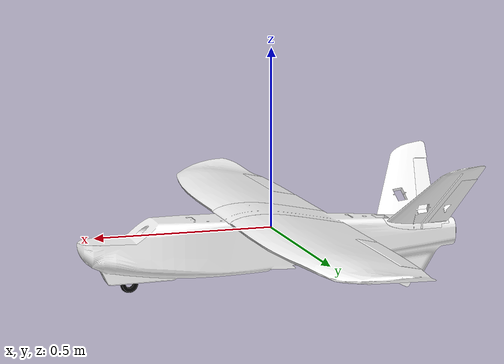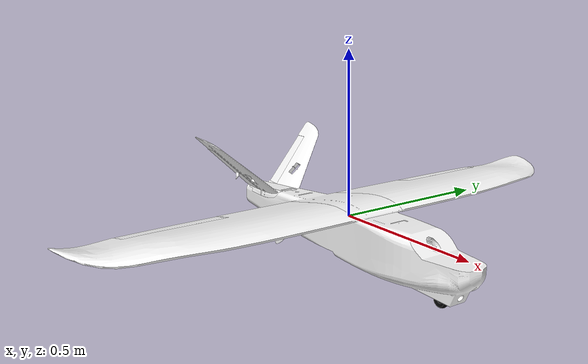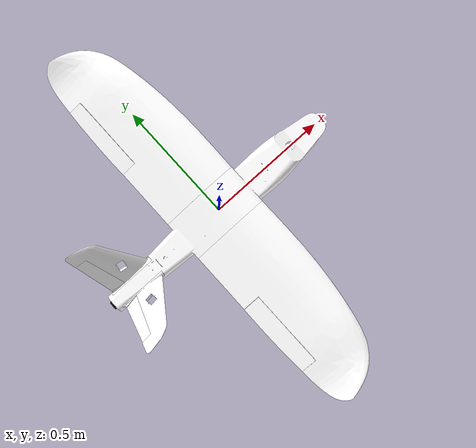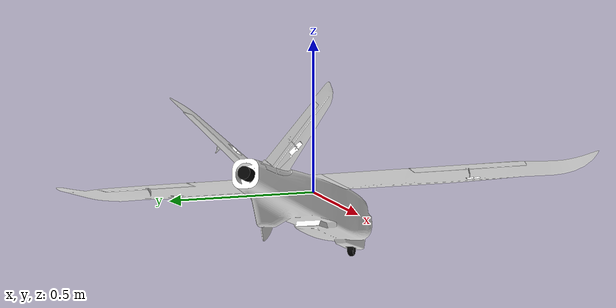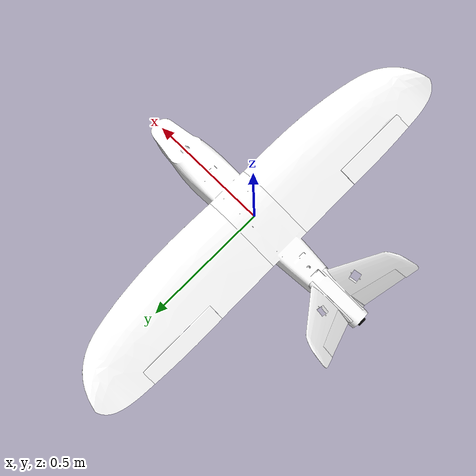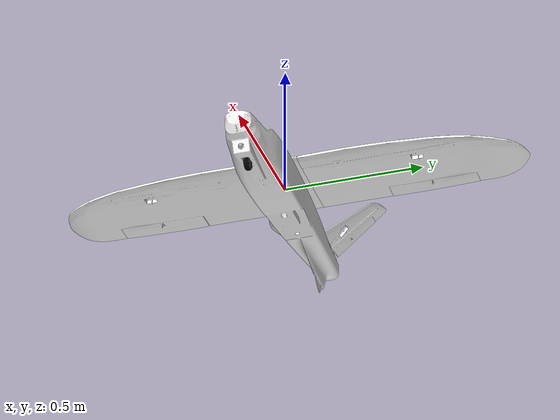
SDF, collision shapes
<?xml version="1.0"?>
<sdf version="1.9">
  <model name="mini_talon_vtail">

    <link name="base_link">
      <inertial>
        <pose>0.050402 0 0 0 0 0</pose>
        <mass>2.2263335</mass>
        <inertia>
          <ixx>0.059107217</ixx>
          <ixy>0</ixy>
          <ixz>0</ixz>
          <iyy>0.20694208</iyy>
          <iyz>0</iyz>
          <izz>0.24939269</izz>
        </inertia>
      </inertial>

      <collision name="fuselage_collision">
        <pose degrees="true">0 0 0 0 0 0</pose>
        <geometry>
          <mesh>
            <uri>model://mini_talon_vtail/meshes/mini_talon_fuselage_collision.stl</uri>
          </mesh>
        </geometry>
      </collision>

      <collision name="left_wing_collision">
        <pose degrees="true">0 0 0 0 0 0</pose>
        <geometry>
          <mesh>
            <uri>model://mini_talon_vtail/meshes/mini_talon_left_wing_collision.stl</uri>
          </mesh>
        </geometry>
      </collision>

      <collision name="right_wing_collision">
        <pose degrees="true">0 0 0 0 0 0</pose>
        <geometry>
          <mesh>
            <uri>model://mini_talon_vtail/meshes/mini_talon_right_wing_collision.stl</uri>
          </mesh>
        </geometry>
      </collision>

      <collision name="left_tail_collision">
        <pose degrees="true">0 0 0 0 0 0</pose>
        <geometry>
          <mesh>
            <uri>model://mini_talon_vtail/meshes/mini_talon_left_tail_collision.stl</uri>
          </mesh>
        </geometry>
      </collision>

      <collision name="right_tail_collision">
        <pose degrees="true">0 0 0 0 0 0</pose>
        <geometry>
          <mesh>
            <uri>model://mini_talon_vtail/meshes/mini_talon_right_tail_collision.stl</uri>
          </mesh>
        </geometry>
      </collision>

      <sensor name="temas_sensoru" type="contact">
        <always_on>1</always_on>
        <update_rate>100</update_rate>
        <contact>
          <collision>fuselage_collision</collision>
          <collision>left_wing_collision</collision>
          <collision>right_wing_collision</collision>
          <collision>left_tail_collision</collision>
          <collision>right_tail_collision</collision>
        </contact>
      </sensor>

      <visual name="fuselage_visual">
        <pose degrees="true">0 0 0 0 0 0</pose>
        <geometry>
          <mesh>
            <uri>model://mini_talon_vtail/meshes/mini_talon_fuselage.dae</uri>
          </mesh>
        </geometry>
        <material>
          <diffuse>1.0 1.0 1.0</diffuse>
          <specular>1.0 1.0 1.0</specular>
          <pbr>
            <metal>
                <metalness>0.1</metalness>
            </metal>
          </pbr>
        </material>
      </visual>

      <visual name="fuselage_logos_visual">
        <pose degrees="true">0 0 0 0 0 0</pose>
        <geometry>
          <mesh>
            <uri>model://mini_talon_vtail/meshes/mini_talon_fuselage_logos.dae</uri>
          </mesh>
        </geometry>
        <material>
          <diffuse>1.0 1.0 1.0</diffuse>
          <specular>1.0 1.0 1.0</specular>
          <pbr>
            <metal>
                <albedo_map>model://mini_talon_vtail/meshes/ardupilot_logo.png</albedo_map>
                <metalness>0.1</metalness>
            </metal>
          </pbr>
        </material>
      </visual>

      <visual name="forward_deck_visual">
        <pose degrees="true">0 0 0 0 0 0</pose>
        <geometry>
          <mesh>
            <uri>model://mini_talon_vtail/meshes/mini_talon_forward_deck.dae</uri>
          </mesh>
        </geometry>
        <material>
          <diffuse>1.0 1.0 1.0</diffuse>
          <specular>1.0 1.0 1.0</specular>
          <pbr>
            <metal>
                <metalness>0.1</metalness>
            </metal>
          </pbr>
        </material>
      </visual>

      <visual name="left_wing_visual">
        <pose degrees="true">0 0 0 0 0 0</pose>
        <geometry>
          <mesh>
            <uri>model://mini_talon_vtail/meshes/mini_talon_left_wing.dae</uri>
          </mesh>
        </geometry>
        <material>
          <diffuse>1.0 1.0 1.0</diffuse>
          <specular>1.0 1.0 1.0</specular>
          <pbr>
            <metal>
                <metalness>0.1</metalness>
            </metal>
          </pbr>
        </material>
      </visual>

      <visual name="left_wing_logo_visual">
        <pose degrees="true">0 0 0 0 0 0</pose>
        <geometry>
          <mesh>
            <uri>model://mini_talon_vtail/meshes/mini_talon_left_wing_logo.dae</uri>
          </mesh>
        </geometry>
        <material>
          <diffuse>1.0 1.0 1.0</diffuse>
          <specular>1.0 1.0 1.0</specular>
          <pbr>
            <metal>
                <albedo_map>model://mini_talon_vtail/meshes/ardupilot_logo.png</albedo_map>
                <metalness>0.1</metalness>
            </metal>
          </pbr>
        </material>
      </visual>

      <visual name="right_wing_visual">
        <pose degrees="true">0 0 0 0 0 0</pose>
        <geometry>
          <mesh>
            <uri>model://mini_talon_vtail/meshes/mini_talon_right_wing.dae</uri>
          </mesh>
        </geometry>
        <material>
          <diffuse>1.0 1.0 1.0</diffuse>
          <specular>1.0 1.0 1.0</specular>
          <pbr>
            <metal>
                <metalness>0.1</metalness>
            </metal>
          </pbr>
        </material>
      </visual>

      <visual name="left_tail_visual">
        <pose degrees="true">0 0 0 0 0 0</pose>
        <geometry>
          <mesh>
            <uri>model://mini_talon_vtail/meshes/mini_talon_left_tail.dae</uri>
          </mesh>
        </geometry>
        <material>
          <diffuse>1.0 1.0 1.0</diffuse>
          <specular>1.0 1.0 1.0</specular>
          <pbr>
            <metal>
                <metalness>0.1</metalness>
            </metal>
          </pbr>
        </material>
      </visual>

      <visual name="right_tail_visual">
        <pose degrees="true">0 0 0 0 0 0</pose>
        <geometry>
          <mesh>
            <uri>model://mini_talon_vtail/meshes/mini_talon_right_tail.dae</uri>
          </mesh>
        </geometry>
        <material>
          <diffuse>1.0 1.0 1.0</diffuse>
          <specular>1.0 1.0 1.0</specular>
          <pbr>
            <metal>
                <metalness>0.1</metalness>
            </metal>
          </pbr>
        </material>
      </visual>

      <visual name="motor_plate_visual">
        <pose degrees="true">-0.55029688 0 -0.040265625 0 90 0</pose>
        <geometry>
          <mesh>
            <uri>model://mini_talon_vtail/meshes/propdrive_3536_frontplate.dae</uri>
          </mesh>
        </geometry>
        <material>
          <diffuse>1.0 1.0 1.0</diffuse>
          <specular>1.0 1.0 1.0</specular>
          <pbr>
            <metal>
                <metalness>0.1</metalness>
            </metal>
          </pbr>
        </material>
      </visual>

      <!-- leave for debugging lift-drag CoP -->

      <!-- Sensors. -->
      <sensor name="imu_sensor" type="imu">
        <pose degrees="true">0 0 0 180 0 0</pose>
        <always_on>1</always_on>
        <update_rate>1000.0</update_rate>
      </sensor>
      <sensor name="navsat_sensor" type="navsat">
        <always_on>1</always_on>
        <update_rate>1</update_rate>
      </sensor>
      <!-- HEDEF İHA (Talon) burun kamerası — gcs "HEDEF İHA" sekmesini besler.
           Burunda, ileriye + hafif aşağı bakar (ufuk + zemin). -->
      <sensor name="talon_camera" type="camera">
        <gz_frame_id>base_link</gz_frame_id>
        <pose>0.46976563 0 0.067109375 0 -0.15 0</pose>
        <always_on>1</always_on>
        <update_rate>30</update_rate>
        <visualize>1</visualize>
        <topic>talon_cam/image</topic>
        <camera>
          <horizontal_fov>1.8</horizontal_fov>
          <image>
            <width>640</width>
            <height>480</height>
            <format>R8G8B8</format>
          </image>
          <clip>
            <near>0.05</near>
            <far>2000</far>
          </clip>
        </camera>
      </sensor>

      <sensor name="chase_camera" type="camera">
        <gz_frame_id>base_link</gz_frame_id>
        <pose>-3.3554688 0 1.07375 0 0.31 0</pose>
        <always_on>1</always_on>
        <update_rate>15</update_rate>
        <visualize>0</visualize>
        <topic>talon_chase/image</topic>
        <camera>
          <horizontal_fov>1.4</horizontal_fov>
          <image>
            <width>640</width>
            <height>480</height>
            <format>R8G8B8</format>
          </image>
          <clip>
            <near>0.05</near>
            <far>2000</far>
          </clip>
        </camera>
      </sensor>

      <sensor name="carpisma_sensoru" type="contact">
        <always_on>1</always_on>
        <update_rate>100</update_rate>
        <contact>
          <collision>fuselage_collision</collision>
          <collision>left_wing_collision</collision>
          <collision>right_wing_collision</collision>
          <collision>left_tail_collision</collision>
          <collision>right_tail_collision</collision>
        </contact>
      </sensor>
    </link>

    <link name="main_wheel_link">
      <pose degrees="true">0.40536478 0 -0.13149948 90 0 0</pose>
      <inertial>
        <mass>0.013333334</mass>
        <inertia>
          <ixx>2.4474975e-06</ixx>
          <ixy>0</ixy>
          <ixz>0</ixz>
          <iyy>2.4474975e-06</iyy>
          <iyz>0</iyz>
          <izz>4.1103478e-06</izz>
        </inertia>
      </inertial>
      <collision name="main_wheel_collision">
        <geometry>
          <mesh>
            <uri>model://mini_talon_vtail/meshes/mini_talon_main_wheel_collision.stl</uri>
          </mesh>
        </geometry>
      </collision>
      <visual name="main_wheel_visual">
        <geometry>
          <mesh>
            <uri>model://mini_talon_vtail/meshes/mini_talon_main_wheel.dae</uri>
          </mesh>
        </geometry>
        <material>
          <diffuse>0.01 0.01 0.01</diffuse>
          <specular>0.01 0.01 0.01</specular>
          <pbr>
            <metal>
                <metalness>0.1</metalness>
                <roughness>0.8</roughness>
            </metal>
          </pbr>
        </material>
      </visual>
    </link>
    <joint name="main_wheel_joint" type="revolute">
      <pose degrees="true">0 0 0 0 0 0</pose>
      <parent>base_link</parent>
      <child>main_wheel_link</child>
      <axis>
        <xyz>0 0 1</xyz>
        <limit>
          <lower>-1.0e-16</lower>
          <upper>1.0e+16</upper>
        </limit>
        <dynamics>
          <damping>0.0001</damping>
        </dynamics>
      </axis>
    </joint>

    <link name="left_aileron_link">
      <pose degrees="true">-0.14361406 0.49795156 0.023354063 0 0 0</pose>
      <inertial>
        <mass>0.013333334</mass>
        <inertia>
          <ixx>0.00011247954</ixx>
          <ixy>0</ixy>
          <ixz>0</ixz>
          <iyy>6.1049805e-06</iyy>
          <iyz>0</iyz>
          <izz>0.00011848443</izz>
        </inertia>
      </inertial>
      <collision name="left_aileron_collision">
        <geometry>
          <mesh>
            <uri>model://mini_talon_vtail/meshes/mini_talon_left_aileron.dae</uri>
          </mesh>
        </geometry>
      </collision>
      <visual name="left_aileron_visual">
        <geometry>
          <mesh>
            <uri>model://mini_talon_vtail/meshes/mini_talon_left_aileron.dae</uri>
          </mesh>
        </geometry>
        <material>
          <diffuse>1.0 1.0 1.0</diffuse>
          <specular>1.0 1.0 1.0</specular>
          <pbr>
            <metal>
                <metalness>0.1</metalness>
            </metal>
          </pbr>
        </material>
      </visual>
      <!-- leave for debugging lift-drag CoP -->
    </link>
    <joint name="left_aileron_joint" type="revolute">
      <pose degrees="true">0.020132812 0 0 0 0 0</pose>
      <parent>base_link</parent>
      <child>left_aileron_link</child>
      <axis>
        <xyz>0 1 0</xyz>
        <limit>
          <lower>-0.523599</lower>
          <upper>0.523599</upper>
        </limit>
        <dynamics>
          <damping>0.01</damping>
        </dynamics>
      </axis>
    </joint>

    <link name="right_aileron_link">
      <pose degrees="true">-0.14361406 -0.49795156 0.023354063 0 0 0</pose>
      <inertial>
        <mass>0.013333334</mass>
        <inertia>
          <ixx>0.00011247954</ixx>
          <ixy>0</ixy>
          <ixz>0</ixz>
          <iyy>6.1049805e-06</iyy>
          <iyz>0</iyz>
          <izz>0.00011848443</izz>
        </inertia>
      </inertial>
      <collision name="right_aileron_collision">
        <pose degrees="true">0.0067109375 -0.002684375 0 0 0 0</pose>
        <geometry>
          <mesh>
            <uri>model://mini_talon_vtail/meshes/mini_talon_right_aileron.dae</uri>
          </mesh>
        </geometry>
      </collision>
      <visual name="right_aileron_visual">
        <pose degrees="true">0.0067109375 -0.002684375 0 0 0 0</pose>
        <geometry>
          <mesh>
            <uri>model://mini_talon_vtail/meshes/mini_talon_right_aileron.dae</uri>
          </mesh>
        </geometry>
        <material>
          <diffuse>1.0 1.0 1.0</diffuse>
          <specular>1.0 1.0 1.0</specular>
          <pbr>
            <metal>
                <metalness>0.1</metalness>
            </metal>
          </pbr>
        </material>
      </visual>
      <!-- leave for debugging lift-drag CoP -->
    </link>
    <joint name="right_aileron_joint" type="revolute">
      <pose degrees="true">0.020132812 0 0 0 0 0</pose>
      <parent>base_link</parent>
      <child>right_aileron_link</child>
      <axis>
        <xyz>0 1 0</xyz>
        <limit>
          <lower>-0.523599</lower>
          <upper>0.523599</upper>
        </limit>
        <dynamics>
          <damping>0.01</damping>
        </dynamics>
      </axis>
    </joint>

    <link name="left_ruddervator_link">
      <pose degrees="true">-0.48989844 0.10334844 0.060398437 45 -10 6</pose>
      <inertial>
        <mass>0.013333334</mass>
        <inertia>
          <ixx>4.7520785e-05</ixx>
          <ixy>0</ixy>
          <ixz>0</ixz>
          <iyy>7.2559019e-06</iyy>
          <iyz>0</iyz>
          <izz>5.4676454e-05</izz>
        </inertia>
      </inertial>
      <collision name="left_ruddervator_collision">
        <geometry>
          <mesh>
            <uri>model://mini_talon_vtail/meshes/mini_talon_left_ruddervator.dae</uri>
          </mesh>
        </geometry>
      </collision>
      <visual name="left_ruddervator_visual">
        <geometry>
          <mesh>
            <uri>model://mini_talon_vtail/meshes/mini_talon_left_ruddervator.dae</uri>
          </mesh>
        </geometry>
        <material>
          <diffuse>1.0 1.0 1.0</diffuse>
          <specular>1.0 1.0 1.0</specular>
          <pbr>
            <metal>
                <metalness>0.1</metalness>
            </metal>
          </pbr>
        </material>
      </visual>
      <!-- leave for debugging lift-drag CoP -->
    </link>
    <joint name="left_ruddervator_joint" type="revolute">
      <pose degrees="true">0.013421875 0 0 0 0 0</pose>
      <parent>base_link</parent>
      <child>left_ruddervator_link</child>
      <axis>
        <xyz>0 1 0</xyz>
        <limit>
          <lower>-0.5934</lower>
          <upper>0.5934</upper>
        </limit>
        <dynamics>
          <damping>0.01</damping>
        </dynamics>
      </axis>
    </joint>

    <link name="right_ruddervator_link">
      <pose degrees="true">-0.48989844 -0.10334844 0.060398437 -45 -10 -6</pose>
      <inertial>
        <mass>0.013333334</mass>
        <inertia>
          <ixx>4.7520785e-05</ixx>
          <ixy>0</ixy>
          <ixz>0</ixz>
          <iyy>7.2559019e-06</iyy>
          <iyz>0</iyz>
          <izz>5.4676454e-05</izz>
        </inertia>
      </inertial>
      <collision name="right_ruddervator_collision">
        <geometry>
          <mesh>
            <uri>model://mini_talon_vtail/meshes/mini_talon_right_ruddervator.dae</uri>
          </mesh>
        </geometry>
      </collision>
      <visual name="right_ruddervator_visual">
        <geometry>
          <mesh>
            <uri>model://mini_talon_vtail/meshes/mini_talon_right_ruddervator.dae</uri>
          </mesh>
        </geometry>
        <material>
          <diffuse>1.0 1.0 1.0</diffuse>
          <specular>1.0 1.0 1.0</specular>
          <pbr>
            <metal>
                <metalness>0.1</metalness>
            </metal>
          </pbr>
        </material>
      </visual>
      <!-- leave for debugging lift-drag CoP -->
    </link>
    <joint name="right_ruddervator_joint" type="revolute">
      <pose degrees="true">0.013421875 0 0 0 0 0</pose>
      <parent>base_link</parent>
      <child>right_ruddervator_link</child>
      <axis>
        <xyz>0 1 0</xyz>
        <limit>
          <lower>-0.5934</lower>
          <upper>0.5934</upper>
        </limit>
        <dynamics>
          <damping>0.01</damping>
        </dynamics>
      </axis>
    </joint>

    <link name="motor_link">
      <pose degrees="true">-0.55029688 0 -0.040265625 0 90 0</pose>
      <inertial>
        <mass>0.207</mass>
        <inertia>
          <ixx>0.00021</ixx>
          <ixy>0</ixy>
          <ixz>0</ixz>
          <iyy>0.00021</iyy>
          <iyz>0</iyz>
          <izz>0.00042</izz>
        </inertia>
      </inertial>

      <collision name="motor_collision">
        <pose degrees="true">0 0 0.018 0 0 0</pose>
        <geometry>
          <cylinder>
            <radius>0.0175</radius>
            <length>0.036</length>
          </cylinder>
        </geometry>
      </collision>
      <visual name="motor_visual">
        <geometry>
          <mesh>
            <uri>model://mini_talon_vtail/meshes/propdrive_3536_motor_can.dae</uri>
          </mesh>
        </geometry>
      </visual>
      <visual name="propeller_visual">
        <pose degrees="true">0 0 -0.005 0 180 0</pose>
        <geometry>
          <mesh>
            <uri>model://mini_talon_vtail/meshes/iris_prop_cw.dae</uri>
            <!-- mesh 10.2" — gerçek pervane 13.7": 0.174/0.1295 = 1.3432.
                 YALNIZ GÖRSEL; vision/geometry.py collision STL okur, etkilenmez. -->
            <scale>1.2749 1.2749 1.2749</scale>
          </mesh>
        </geometry>
        <material>
          <ambient>0.01 0.01 0.01 1</ambient>
          <diffuse>0.01 0.01 0.01 1</diffuse>
          <specular>0.01 0.01 0.01 1</specular>
        </material>
      </visual>
    </link>
    <joint name="motor_joint" type="revolute">
      <pose degrees="true">0 0 0 0 180 0</pose>
      <parent>base_link</parent>
      <child>motor_link</child>
      <axis>
        <xyz>0 0 1</xyz>
        <limit>
          <lower>-1.0e-16</lower>
          <upper>1.0e+16</upper>
        </limit>
        <dynamics>
          <damping>0.004</damping>
        </dynamics>
      </axis>
    </joint>

    <!-- System plugins. -->
    <plugin filename="gz-sim-joint-state-publisher-system"
      name="gz::sim::systems::JointStatePublisher">
    </plugin>

    <!-- Positive is up. -->
    <plugin
      filename="gz-sim-joint-position-controller-system"
      name="gz::sim::systems::JointPositionController">
      <joint_name>left_aileron_joint</joint_name>
      <initial_position>0.0</initial_position>
      <topic>/left_aileron_joint/cmd_pos</topic>
      <p_gain>10</p_gain>
      <i_gain>0.0</i_gain>
      <d_gain>0.0</d_gain>
      <i_max>1</i_max>
      <i_min>-1</i_min>
      <cmd_max>5</cmd_max>
      <cmd_min>-5</cmd_min>
    </plugin>

    <!-- Positive is up. -->
    <plugin
      filename="gz-sim-joint-position-controller-system"
      name="gz::sim::systems::JointPositionController">
      <joint_name>right_aileron_joint</joint_name>
      <initial_position>0.0</initial_position>
      <topic>/right_aileron_joint/cmd_pos</topic>
      <p_gain>10</p_gain>
      <i_gain>0.0</i_gain>
      <d_gain>0.0</d_gain>
      <i_max>1</i_max>
      <i_min>-1</i_min>
      <cmd_max>5</cmd_max>
      <cmd_min>-5</cmd_min>
    </plugin>

    <!-- Positive is up. -->
    <plugin
      filename="gz-sim-joint-position-controller-system"
      name="gz::sim::systems::JointPositionController">
      <joint_name>left_ruddervator_joint</joint_name>
      <initial_position>0.0</initial_position>
      <topic>/left_ruddervator_joint/cmd_pos</topic>
      <p_gain>10</p_gain>
      <i_gain>0.0</i_gain>
      <d_gain>0.0</d_gain>
      <i_max>1</i_max>
      <i_min>-1</i_min>
      <cmd_max>5</cmd_max>
      <cmd_min>-5</cmd_min>
    </plugin>

    <!-- Positive is up. -->
    <plugin
      filename="gz-sim-joint-position-controller-system"
      name="gz::sim::systems::JointPositionController">
      <joint_name>right_ruddervator_joint</joint_name>
      <initial_position>0.0</initial_position>
      <topic>/right_ruddervator_joint/cmd_pos</topic>
      <p_gain>10</p_gain>
      <i_gain>0.0</i_gain>
      <d_gain>0.0</d_gain>
      <i_max>1</i_max>
      <i_min>-1</i_min>
      <cmd_max>5</cmd_max>
      <cmd_min>-5</cmd_min>
    </plugin>

    <!-- motor_joint cw -->
    <plugin filename="gz-sim-lift-drag-system"
        name="gz::sim::systems::LiftDrag">
      <a0>0.2247</a0>
      <alpha_stall>1.4</alpha_stall>
      <cla>4.25</cla>
      <cda>0.10</cda>
      <cma>0.00</cma>
      <cla_stall>-0.025</cla_stall>
      <cda_stall>0.0</cda_stall>
      <cma_stall>0.0</cma_stall>
      <area>0.002146</area>
      <air_density>1.2041</air_density>
      <cp>0.1238 0 0</cp>
      <forward>0 -1 0</forward>
      <upward>0 0 1</upward>
      <link_name>motor_link</link_name>
    </plugin>
    <plugin filename="gz-sim-lift-drag-system"
        name="gz::sim::systems::LiftDrag">
      <a0>0.2247</a0>
      <alpha_stall>1.4</alpha_stall>
      <cla>4.25</cla>
      <cda>0.10</cda>
      <cma>0.00</cma>
      <cla_stall>-0.025</cla_stall>
      <cda_stall>0.0</cda_stall>
      <cma_stall>0.0</cma_stall>
      <area>0.002146</area>
      <air_density>1.2041</air_density>
      <cp>-0.1238 0 0</cp>
      <forward>0 1 0</forward>
      <upward>0 0 1</upward>
      <link_name>motor_link</link_name>
    </plugin>

    <!-- left wing -->
    <plugin filename="gz-sim-lift-drag-system"
        name="gz::sim::systems::LiftDrag">
      <a0>0.13</a0>
      <cla>3.7</cla>
      <cda>0.06417112299</cda>
      <cma>0</cma>
      <alpha_stall>0.3391428111</alpha_stall>
      <cla_stall>-3.85</cla_stall>
      <cda_stall>-0.9233984055</cda_stall>
      <cma_stall>0</cma_stall>
      <cp>0 0.36239063 0.038923438</cp>
      <area>0.3</area>
      <air_density>1.2041</air_density>
      <forward>1 0 0</forward>
      <upward>0 0 1</upward>
      <link_name>base_link</link_name>
      <control_joint_name>left_aileron_joint</control_joint_name>
      <control_joint_rad_to_cl>-0.75</control_joint_rad_to_cl>
    </plugin>

    <!-- right wing -->
    <plugin filename="gz-sim-lift-drag-system"
        name="gz::sim::systems::LiftDrag">
      <a0>0.13</a0>
      <cla>3.7</cla>
      <cda>0.06417112299</cda>
      <cma>0</cma>
      <alpha_stall>0.3391428111</alpha_stall>
      <cla_stall>-3.85</cla_stall>
      <cda_stall>-0.9233984055</cda_stall>
      <cma_stall>0</cma_stall>
      <cp>0 -0.36239063 0.038923438</cp>
      <area>0.3</area>
      <air_density>1.2041</air_density>
      <forward>1 0 0</forward>
      <upward>0 0 1</upward>
      <link_name>base_link</link_name>
      <control_joint_name>right_aileron_joint</control_joint_name>
      <control_joint_rad_to_cl>-0.75</control_joint_rad_to_cl>
    </plugin>

    <!-- left v-tail -->
    <plugin filename="gz-sim-lift-drag-system"
        name="gz::sim::systems::LiftDrag">
      <a0>0.13</a0>
      <cla>3.7</cla>
      <cda>0.06417112299</cda>
      <cma>0</cma>
      <alpha_stall>0.3391428111</alpha_stall>
      <cla_stall>-3.85</cla_stall>
      <cda_stall>-0.9233984055</cda_stall>
      <cma_stall>0</cma_stall>
      <cp>-0.44292188 0.107375 0.068451562</cp>
      <area>0.046875</area>
      <air_density>1.2041</air_density>
      <forward>1 0 0</forward>
      <upward>0 1 1</upward>
      <link_name>base_link</link_name>
      <control_joint_name>left_ruddervator_joint</control_joint_name>
      <control_joint_rad_to_cl>-2.0</control_joint_rad_to_cl>
    </plugin>

    <!-- right v-tail -->
    <plugin filename="gz-sim-lift-drag-system"
        name="gz::sim::systems::LiftDrag">
      <a0>0.13</a0>
      <cla>3.7</cla>
      <cda>0.06417112299</cda>
      <cma>0</cma>
      <alpha_stall>0.3391428111</alpha_stall>
      <cla_stall>-3.85</cla_stall>
      <cda_stall>-0.9233984055</cda_stall>
      <cma_stall>0</cma_stall>
      <cp>-0.44292188 -0.107375 0.068451562</cp>
      <area>0.046875</area>
      <air_density>1.2041</air_density>
      <forward>1 0 0</forward>
      <upward>0 -1 1</upward>
      <link_name>base_link</link_name>
      <control_joint_name>right_ruddervator_joint</control_joint_name>
      <control_joint_rad_to_cl>-2.0</control_joint_rad_to_cl>
    </plugin>

    <plugin filename="gz-sim-lift-drag-system"
        name="gz::sim::systems::LiftDrag">
      <a0>0.3</a0>
      <cla>0.0</cla>
      <cda>0.56</cda>
      <cma>0</cma>
      <alpha_stall>1.5</alpha_stall>
      <cla_stall>0</cla_stall>
      <cda_stall>0</cda_stall>
      <cma_stall>0</cma_stall>
      <cp>0 0 0</cp>
      <area>0.10</area>
      <air_density>1.2041</air_density>
      <forward>1 0 0</forward>
      <upward>0 0 1</upward>
      <link_name>base_link</link_name>
    </plugin>

    <plugin name="ArduPilotPlugin"
      filename="ArduPilotPlugin">
      <!-- Port settings. iris 9002 kullaniyor; Talon -I1 icin 9012. -->
      <fdm_addr>127.0.0.1</fdm_addr>
      <fdm_port_in>9012</fdm_port_in>
      <connectionTimeoutMaxCount>5</connectionTimeoutMaxCount>
      <lock_step>1</lock_step>
      <have_32_channels>0</have_32_channels>

      <!-- Frame transforms.-->
      <modelXYZToAirplaneXForwardZDown>0 0 0 3.141593 0 0</modelXYZToAirplaneXForwardZDown>
      <gazeboXYZToNED>0 0 0 3.141593 0 1.57079632</gazeboXYZToNED>

      <!-- Sensors. -->
      <imuName>base_link::imu_sensor</imuName>

      <control channel="0">
        <jointName>left_aileron_joint</jointName>
        <multiplier>-1.0471976</multiplier>
        <offset>-0.5</offset>
        <servo_min>1000</servo_min>
        <servo_max>2000</servo_max>
        <type>COMMAND</type>
        <cmd_topic>/left_aileron_joint/cmd_pos</cmd_topic>
      </control>

      <control channel="0">
        <jointName>right_aileron_joint</jointName>
        <multiplier>1.0471976</multiplier>
        <offset>-0.5</offset>
        <servo_min>1000</servo_min>
        <servo_max>2000</servo_max>
        <type>COMMAND</type>
        <cmd_topic>/right_aileron_joint/cmd_pos</cmd_topic>
      </control>

      <control channel="1">
        <jointName>left_ruddervator_joint</jointName>
        <multiplier>1.1868239</multiplier>
        <offset>-0.5</offset>
        <servo_min>1000</servo_min>
        <servo_max>2000</servo_max>
        <type>COMMAND</type>
        <cmd_topic>/left_ruddervator_joint/cmd_pos</cmd_topic>
      </control>

      <!--
          SERVO3_FUNCTION   70 (Throttle)
          SERVO3_MAX        2000
          SERVO3_MIN        1000
          SERVO3_REVERSED   0
          SERVO3_TRIM       1000
       -->
      <control channel="2">
        <jointName>motor_joint</jointName>
        <multiplier>1080</multiplier>
        <offset>0</offset>
        <servo_min>1000</servo_min>
        <servo_max>2000</servo_max>

        <type>VELOCITY</type>
        <p_gain>0.20</p_gain>
        <i_gain>0</i_gain>
        <d_gain>0</d_gain>
        <i_max>1</i_max>
        <i_min>-1</i_min>
        <cmd_max>5.0</cmd_max>
        <cmd_min>-5.0</cmd_min>
      </control>

      <control channel="3">
        <jointName>right_ruddervator_joint</jointName>
        <multiplier>1.1868239</multiplier>
        <offset>-0.5</offset>
        <servo_min>1000</servo_min>
        <servo_max>2000</servo_max>
        <type>COMMAND</type>
        <cmd_topic>/right_ruddervator_joint/cmd_pos</cmd_topic>
      </control>

    </plugin>

  </model>
</sdf>
